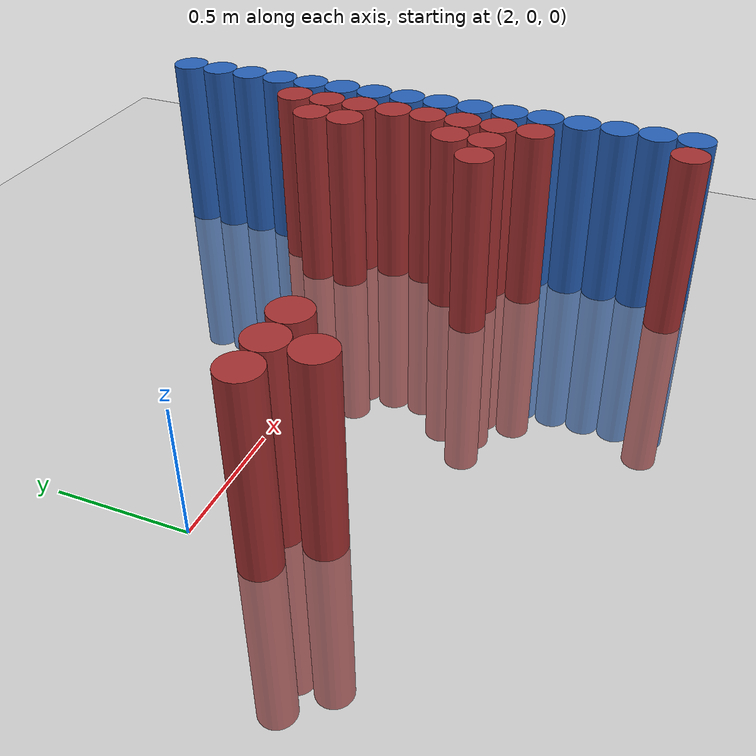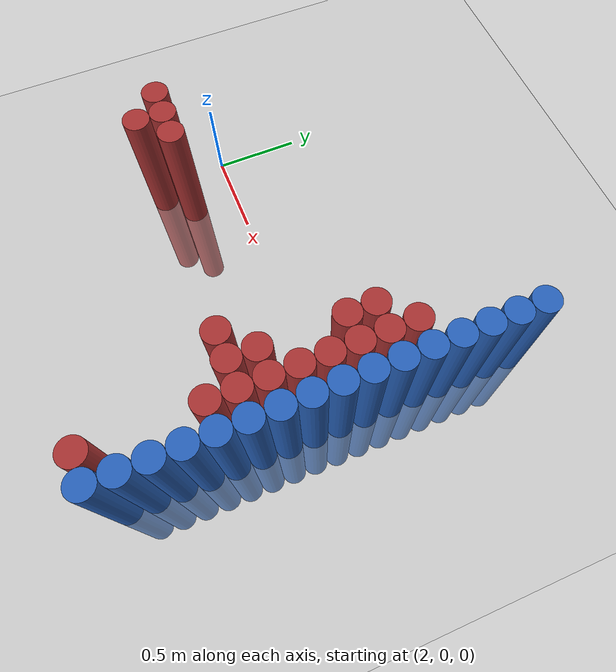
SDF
<sdf version="1.6">
 <world name="default">
  <model name="ground_plane">
   <static>1</static>
   <link name="link">
    <collision name="collision">
     <geometry><plane><normal>0 0 1</normal><size>100 100</size></plane></geometry>
     <surface><friction><ode><mu>100</mu><mu2>50</mu2></ode></friction></surface>
    </collision>
    <visual name="visual">
     <cast_shadows>0</cast_shadows>
     <geometry><plane><normal>0 0 1</normal><size>100 100</size></plane></geometry>
     <material>
      <script><uri>file://media/materials/scripts/gazebo.material</uri><name>Gazebo/Grey</name></script>
     </material>
    </visual>
   </link>
  </model>
  <model name="unit_cylinder_98">
   <static>1</static>
   <pose>3.925000 -1.175000 0.000000 0.000000 0.000000 0.000000</pose>
   <link name="link">
    <inertial>
     <mass>1</mass>
     <inertia><ixx>0.145833</ixx><ixy>0</ixy><ixz>0</ixz><iyy>0.145833</iyy><iyz>0</iyz><izz>0.125</izz></inertia>
    </inertial>
    <collision name="collision">
     <geometry><cylinder><radius>0.075000</radius><length>1.5</length></cylinder></geometry>
    </collision>
    <visual name="visual">
     <geometry><cylinder><radius>0.075000</radius><length>1.5</length></cylinder></geometry>
     <material>
      <ambient>0.152000 0.379000 0.720000 1</ambient>
      <diffuse>0.152000 0.379000 0.720000 1</diffuse>
     </material>
     <material>
      <script><name>Gazebo/Grey</name><uri>file://media/materials/scripts/gazebo.material</uri></script>
     </material>
    </visual>
   </link>
  </model>
  <model name="unit_cylinder_100">
   <static>1</static>
   <pose>3.925000 -1.025000 0.000000 0.000000 0.000000 0.000000</pose>
   <link name="link">
    <inertial>
     <mass>1</mass>
     <inertia><ixx>0.145833</ixx><ixy>0</ixy><ixz>0</ixz><iyy>0.145833</iyy><iyz>0</iyz><izz>0.125</izz></inertia>
    </inertial>
    <collision name="collision">
     <geometry><cylinder><radius>0.075000</radius><length>1.5</length></cylinder></geometry>
    </collision>
    <visual name="visual">
     <geometry><cylinder><radius>0.075000</radius><length>1.5</length></cylinder></geometry>
     <material>
      <ambient>0.152000 0.379000 0.720000 1</ambient>
      <diffuse>0.152000 0.379000 0.720000 1</diffuse>
     </material>
     <material>
      <script><name>Gazebo/Grey</name><uri>file://media/materials/scripts/gazebo.material</uri></script>
     </material>
    </visual>
   </link>
  </model>
  <model name="unit_cylinder_102">
   <static>1</static>
   <pose>3.925000 -0.875000 0.000000 0.000000 0.000000 0.000000</pose>
   <link name="link">
    <inertial>
     <mass>1</mass>
     <inertia><ixx>0.145833</ixx><ixy>0</ixy><ixz>0</ixz><iyy>0.145833</iyy><iyz>0</iyz><izz>0.125</izz></inertia>
    </inertial>
    <collision name="collision">
     <geometry><cylinder><radius>0.075000</radius><length>1.5</length></cylinder></geometry>
    </collision>
    <visual name="visual">
     <geometry><cylinder><radius>0.075000</radius><length>1.5</length></cylinder></geometry>
     <material>
      <ambient>0.152000 0.379000 0.720000 1</ambient>
      <diffuse>0.152000 0.379000 0.720000 1</diffuse>
     </material>
     <material>
      <script><name>Gazebo/Grey</name><uri>file://media/materials/scripts/gazebo.material</uri></script>
     </material>
    </visual>
   </link>
  </model>
  <model name="unit_cylinder_104">
   <static>1</static>
   <pose>3.925000 -0.725000 0.000000 0.000000 0.000000 0.000000</pose>
   <link name="link">
    <inertial>
     <mass>1</mass>
     <inertia><ixx>0.145833</ixx><ixy>0</ixy><ixz>0</ixz><iyy>0.145833</iyy><iyz>0</iyz><izz>0.125</izz></inertia>
    </inertial>
    <collision name="collision">
     <geometry><cylinder><radius>0.075000</radius><length>1.5</length></cylinder></geometry>
    </collision>
    <visual name="visual">
     <geometry><cylinder><radius>0.075000</radius><length>1.5</length></cylinder></geometry>
     <material>
      <ambient>0.152000 0.379000 0.720000 1</ambient>
      <diffuse>0.152000 0.379000 0.720000 1</diffuse>
     </material>
     <material>
      <script><name>Gazebo/Grey</name><uri>file://media/materials/scripts/gazebo.material</uri></script>
     </material>
    </visual>
   </link>
  </model>
  <model name="unit_cylinder_106">
   <static>1</static>
   <pose>3.925000 -0.575000 0.000000 0.000000 0.000000 0.000000</pose>
   <link name="link">
    <inertial>
     <mass>1</mass>
     <inertia><ixx>0.145833</ixx><ixy>0</ixy><ixz>0</ixz><iyy>0.145833</iyy><iyz>0</iyz><izz>0.125</izz></inertia>
    </inertial>
    <collision name="collision">
     <geometry><cylinder><radius>0.075000</radius><length>1.5</length></cylinder></geometry>
    </collision>
    <visual name="visual">
     <geometry><cylinder><radius>0.075000</radius><length>1.5</length></cylinder></geometry>
     <material>
      <ambient>0.152000 0.379000 0.720000 1</ambient>
      <diffuse>0.152000 0.379000 0.720000 1</diffuse>
     </material>
     <material>
      <script><name>Gazebo/Grey</name><uri>file://media/materials/scripts/gazebo.material</uri></script>
     </material>
    </visual>
   </link>
  </model>
  <model name="unit_cylinder_108">
   <static>1</static>
   <pose>3.925000 -0.425000 0.000000 0.000000 0.000000 0.000000</pose>
   <link name="link">
    <inertial>
     <mass>1</mass>
     <inertia><ixx>0.145833</ixx><ixy>0</ixy><ixz>0</ixz><iyy>0.145833</iyy><iyz>0</iyz><izz>0.125</izz></inertia>
    </inertial>
    <collision name="collision">
     <geometry><cylinder><radius>0.075000</radius><length>1.5</length></cylinder></geometry>
    </collision>
    <visual name="visual">
     <geometry><cylinder><radius>0.075000</radius><length>1.5</length></cylinder></geometry>
     <material>
      <ambient>0.152000 0.379000 0.720000 1</ambient>
      <diffuse>0.152000 0.379000 0.720000 1</diffuse>
     </material>
     <material>
      <script><name>Gazebo/Grey</name><uri>file://media/materials/scripts/gazebo.material</uri></script>
     </material>
    </visual>
   </link>
  </model>
  <model name="unit_cylinder_110">
   <static>1</static>
   <pose>3.925000 -0.275000 0.000000 0.000000 0.000000 0.000000</pose>
   <link name="link">
    <inertial>
     <mass>1</mass>
     <inertia><ixx>0.145833</ixx><ixy>0</ixy><ixz>0</ixz><iyy>0.145833</iyy><iyz>0</iyz><izz>0.125</izz></inertia>
    </inertial>
    <collision name="collision">
     <geometry><cylinder><radius>0.075000</radius><length>1.5</length></cylinder></geometry>
    </collision>
    <visual name="visual">
     <geometry><cylinder><radius>0.075000</radius><length>1.5</length></cylinder></geometry>
     <material>
      <ambient>0.152000 0.379000 0.720000 1</ambient>
      <diffuse>0.152000 0.379000 0.720000 1</diffuse>
     </material>
     <material>
      <script><name>Gazebo/Grey</name><uri>file://media/materials/scripts/gazebo.material</uri></script>
     </material>
    </visual>
   </link>
  </model>
  <model name="unit_cylinder_112">
   <static>1</static>
   <pose>3.925000 -0.125000 0.000000 0.000000 0.000000 0.000000</pose>
   <link name="link">
    <inertial>
     <mass>1</mass>
     <inertia><ixx>0.145833</ixx><ixy>0</ixy><ixz>0</ixz><iyy>0.145833</iyy><iyz>0</iyz><izz>0.125</izz></inertia>
    </inertial>
    <collision name="collision">
     <geometry><cylinder><radius>0.075000</radius><length>1.5</length></cylinder></geometry>
    </collision>
    <visual name="visual">
     <geometry><cylinder><radius>0.075000</radius><length>1.5</length></cylinder></geometry>
     <material>
      <ambient>0.152000 0.379000 0.720000 1</ambient>
      <diffuse>0.152000 0.379000 0.720000 1</diffuse>
     </material>
     <material>
      <script><name>Gazebo/Grey</name><uri>file://media/materials/scripts/gazebo.material</uri></script>
     </material>
    </visual>
   </link>
  </model>
  <model name="unit_cylinder_114">
   <static>1</static>
   <pose>3.925000 0.025000 0.000000 0.000000 0.000000 0.000000</pose>
   <link name="link">
    <inertial>
     <mass>1</mass>
     <inertia><ixx>0.145833</ixx><ixy>0</ixy><ixz>0</ixz><iyy>0.145833</iyy><iyz>0</iyz><izz>0.125</izz></inertia>
    </inertial>
    <collision name="collision">
     <geometry><cylinder><radius>0.075000</radius><length>1.5</length></cylinder></geometry>
    </collision>
    <visual name="visual">
     <geometry><cylinder><radius>0.075000</radius><length>1.5</length></cylinder></geometry>
     <material>
      <ambient>0.152000 0.379000 0.720000 1</ambient>
      <diffuse>0.152000 0.379000 0.720000 1</diffuse>
     </material>
     <material>
      <script><name>Gazebo/Grey</name><uri>file://media/materials/scripts/gazebo.material</uri></script>
     </material>
    </visual>
   </link>
  </model>
  <model name="unit_cylinder_116">
   <static>1</static>
   <pose>3.925000 0.175000 0.000000 0.000000 0.000000 0.000000</pose>
   <link name="link">
    <inertial>
     <mass>1</mass>
     <inertia><ixx>0.145833</ixx><ixy>0</ixy><ixz>0</ixz><iyy>0.145833</iyy><iyz>0</iyz><izz>0.125</izz></inertia>
    </inertial>
    <collision name="collision">
     <geometry><cylinder><radius>0.075000</radius><length>1.5</length></cylinder></geometry>
    </collision>
    <visual name="visual">
     <geometry><cylinder><radius>0.075000</radius><length>1.5</length></cylinder></geometry>
     <material>
      <ambient>0.152000 0.379000 0.720000 1</ambient>
      <diffuse>0.152000 0.379000 0.720000 1</diffuse>
     </material>
     <material>
      <script><name>Gazebo/Grey</name><uri>file://media/materials/scripts/gazebo.material</uri></script>
     </material>
    </visual>
   </link>
  </model>
  <model name="unit_cylinder_118">
   <static>1</static>
   <pose>3.925000 0.325000 0.000000 0.000000 0.000000 0.000000</pose>
   <link name="link">
    <inertial>
     <mass>1</mass>
     <inertia><ixx>0.145833</ixx><ixy>0</ixy><ixz>0</ixz><iyy>0.145833</iyy><iyz>0</iyz><izz>0.125</izz></inertia>
    </inertial>
    <collision name="collision">
     <geometry><cylinder><radius>0.075000</radius><length>1.5</length></cylinder></geometry>
    </collision>
    <visual name="visual">
     <geometry><cylinder><radius>0.075000</radius><length>1.5</length></cylinder></geometry>
     <material>
      <ambient>0.152000 0.379000 0.720000 1</ambient>
      <diffuse>0.152000 0.379000 0.720000 1</diffuse>
     </material>
     <material>
      <script><name>Gazebo/Grey</name><uri>file://media/materials/scripts/gazebo.material</uri></script>
     </material>
    </visual>
   </link>
  </model>
  <model name="unit_cylinder_120">
   <static>1</static>
   <pose>3.925000 0.475000 0.000000 0.000000 0.000000 0.000000</pose>
   <link name="link">
    <inertial>
     <mass>1</mass>
     <inertia><ixx>0.145833</ixx><ixy>0</ixy><ixz>0</ixz><iyy>0.145833</iyy><iyz>0</iyz><izz>0.125</izz></inertia>
    </inertial>
    <collision name="collision">
     <geometry><cylinder><radius>0.075000</radius><length>1.5</length></cylinder></geometry>
    </collision>
    <visual name="visual">
     <geometry><cylinder><radius>0.075000</radius><length>1.5</length></cylinder></geometry>
     <material>
      <ambient>0.152000 0.379000 0.720000 1</ambient>
      <diffuse>0.152000 0.379000 0.720000 1</diffuse>
     </material>
     <material>
      <script><name>Gazebo/Grey</name><uri>file://media/materials/scripts/gazebo.material</uri></script>
     </material>
    </visual>
   </link>
  </model>
  <model name="unit_cylinder_122">
   <static>1</static>
   <pose>3.925000 0.625000 0.000000 0.000000 0.000000 0.000000</pose>
   <link name="link">
    <inertial>
     <mass>1</mass>
     <inertia><ixx>0.145833</ixx><ixy>0</ixy><ixz>0</ixz><iyy>0.145833</iyy><iyz>0</iyz><izz>0.125</izz></inertia>
    </inertial>
    <collision name="collision">
     <geometry><cylinder><radius>0.075000</radius><length>1.5</length></cylinder></geometry>
    </collision>
    <visual name="visual">
     <geometry><cylinder><radius>0.075000</radius><length>1.5</length></cylinder></geometry>
     <material>
      <ambient>0.152000 0.379000 0.720000 1</ambient>
      <diffuse>0.152000 0.379000 0.720000 1</diffuse>
     </material>
     <material>
      <script><name>Gazebo/Grey</name><uri>file://media/materials/scripts/gazebo.material</uri></script>
     </material>
    </visual>
   </link>
  </model>
  <model name="unit_cylinder_124">
   <static>1</static>
   <pose>3.925000 0.775000 0.000000 0.000000 0.000000 0.000000</pose>
   <link name="link">
    <inertial>
     <mass>1</mass>
     <inertia><ixx>0.145833</ixx><ixy>0</ixy><ixz>0</ixz><iyy>0.145833</iyy><iyz>0</iyz><izz>0.125</izz></inertia>
    </inertial>
    <collision name="collision">
     <geometry><cylinder><radius>0.075000</radius><length>1.5</length></cylinder></geometry>
    </collision>
    <visual name="visual">
     <geometry><cylinder><radius>0.075000</radius><length>1.5</length></cylinder></geometry>
     <material>
      <ambient>0.152000 0.379000 0.720000 1</ambient>
      <diffuse>0.152000 0.379000 0.720000 1</diffuse>
     </material>
     <material>
      <script><name>Gazebo/Grey</name><uri>file://media/materials/scripts/gazebo.material</uri></script>
     </material>
    </visual>
   </link>
  </model>
  <model name="unit_cylinder_126">
   <static>1</static>
   <pose>3.925000 0.925000 0.000000 0.000000 0.000000 0.000000</pose>
   <link name="link">
    <inertial>
     <mass>1</mass>
     <inertia><ixx>0.145833</ixx><ixy>0</ixy><ixz>0</ixz><iyy>0.145833</iyy><iyz>0</iyz><izz>0.125</izz></inertia>
    </inertial>
    <collision name="collision">
     <geometry><cylinder><radius>0.075000</radius><length>1.5</length></cylinder></geometry>
    </collision>
    <visual name="visual">
     <geometry><cylinder><radius>0.075000</radius><length>1.5</length></cylinder></geometry>
     <material>
      <ambient>0.152000 0.379000 0.720000 1</ambient>
      <diffuse>0.152000 0.379000 0.720000 1</diffuse>
     </material>
     <material>
      <script><name>Gazebo/Grey</name><uri>file://media/materials/scripts/gazebo.material</uri></script>
     </material>
    </visual>
   </link>
  </model>
  <model name="unit_cylinder_128">
   <static>1</static>
   <pose>3.925000 1.075000 0.000000 0.000000 0.000000 0.000000</pose>
   <link name="link">
    <inertial>
     <mass>1</mass>
     <inertia><ixx>0.145833</ixx><ixy>0</ixy><ixz>0</ixz><iyy>0.145833</iyy><iyz>0</iyz><izz>0.125</izz></inertia>
    </inertial>
    <collision name="collision">
     <geometry><cylinder><radius>0.075000</radius><length>1.5</length></cylinder></geometry>
    </collision>
    <visual name="visual">
     <geometry><cylinder><radius>0.075000</radius><length>1.5</length></cylinder></geometry>
     <material>
      <ambient>0.152000 0.379000 0.720000 1</ambient>
      <diffuse>0.152000 0.379000 0.720000 1</diffuse>
     </material>
     <material>
      <script><name>Gazebo/Grey</name><uri>file://media/materials/scripts/gazebo.material</uri></script>
     </material>
    </visual>
   </link>
  </model>
  <model name="unit_cylinder_397">
   <static>1</static>
   <pose>1.975000 -0.275000 0.000000 0.000000 0.000000 0.000000</pose>
   <link name="link">
    <inertial>
     <mass>1</mass>
     <inertia><ixx>0.145833</ixx><ixy>0</ixy><ixz>0</ixz><iyy>0.145833</iyy><iyz>0</iyz><izz>0.125</izz></inertia>
    </inertial>
    <collision name="collision">
     <geometry><cylinder><radius>0.075000</radius><length>1.5</length></cylinder></geometry>
    </collision>
    <visual name="visual">
     <geometry><cylinder><radius>0.075000</radius><length>1.5</length></cylinder></geometry>
     <material>
      <ambient>0.648000 0.192000 0.192000 1</ambient>
      <diffuse>0.648000 0.192000 0.192000 1</diffuse>
     </material>
     <material>
      <script><name>Gazebo/Grey</name><uri>file://media/materials/scripts/gazebo.material</uri></script>
     </material>
    </visual>
   </link>
  </model>
  <model name="unit_cylinder_401">
   <static>1</static>
   <pose>2.125000 -0.425000 0.000000 0.000000 0.000000 0.000000</pose>
   <link name="link">
    <inertial>
     <mass>1</mass>
     <inertia><ixx>0.145833</ixx><ixy>0</ixy><ixz>0</ixz><iyy>0.145833</iyy><iyz>0</iyz><izz>0.125</izz></inertia>
    </inertial>
    <collision name="collision">
     <geometry><cylinder><radius>0.075000</radius><length>1.5</length></cylinder></geometry>
    </collision>
    <visual name="visual">
     <geometry><cylinder><radius>0.075000</radius><length>1.5</length></cylinder></geometry>
     <material>
      <ambient>0.648000 0.192000 0.192000 1</ambient>
      <diffuse>0.648000 0.192000 0.192000 1</diffuse>
     </material>
     <material>
      <script><name>Gazebo/Grey</name><uri>file://media/materials/scripts/gazebo.material</uri></script>
     </material>
    </visual>
   </link>
  </model>
  <model name="unit_cylinder_402">
   <static>1</static>
   <pose>2.125000 -0.275000 0.000000 0.000000 0.000000 0.000000</pose>
   <link name="link">
    <inertial>
     <mass>1</mass>
     <inertia><ixx>0.145833</ixx><ixy>0</ixy><ixz>0</ixz><iyy>0.145833</iyy><iyz>0</iyz><izz>0.125</izz></inertia>
    </inertial>
    <collision name="collision">
     <geometry><cylinder><radius>0.075000</radius><length>1.5</length></cylinder></geometry>
    </collision>
    <visual name="visual">
     <geometry><cylinder><radius>0.075000</radius><length>1.5</length></cylinder></geometry>
     <material>
      <ambient>0.648000 0.192000 0.192000 1</ambient>
      <diffuse>0.648000 0.192000 0.192000 1</diffuse>
     </material>
     <material>
      <script><name>Gazebo/Grey</name><uri>file://media/materials/scripts/gazebo.material</uri></script>
     </material>
    </visual>
   </link>
  </model>
  <model name="unit_cylinder_407">
   <static>1</static>
   <pose>2.275000 -0.275000 0.000000 0.000000 0.000000 0.000000</pose>
   <link name="link">
    <inertial>
     <mass>1</mass>
     <inertia><ixx>0.145833</ixx><ixy>0</ixy><ixz>0</ixz><iyy>0.145833</iyy><iyz>0</iyz><izz>0.125</izz></inertia>
    </inertial>
    <collision name="collision">
     <geometry><cylinder><radius>0.075000</radius><length>1.5</length></cylinder></geometry>
    </collision>
    <visual name="visual">
     <geometry><cylinder><radius>0.075000</radius><length>1.5</length></cylinder></geometry>
     <material>
      <ambient>0.648000 0.192000 0.192000 1</ambient>
      <diffuse>0.648000 0.192000 0.192000 1</diffuse>
     </material>
     <material>
      <script><name>Gazebo/Grey</name><uri>file://media/materials/scripts/gazebo.material</uri></script>
     </material>
    </visual>
   </link>
  </model>
  <model name="unit_cylinder_412">
   <static>1</static>
   <pose>3.475000 -0.425000 0.000000 0.000000 0.000000 0.000000</pose>
   <link name="link">
    <inertial>
     <mass>1</mass>
     <inertia><ixx>0.145833</ixx><ixy>0</ixy><ixz>0</ixz><iyy>0.145833</iyy><iyz>0</iyz><izz>0.125</izz></inertia>
    </inertial>
    <collision name="collision">
     <geometry><cylinder><radius>0.075000</radius><length>1.5</length></cylinder></geometry>
    </collision>
    <visual name="visual">
     <geometry><cylinder><radius>0.075000</radius><length>1.5</length></cylinder></geometry>
     <material>
      <ambient>0.648000 0.192000 0.192000 1</ambient>
      <diffuse>0.648000 0.192000 0.192000 1</diffuse>
     </material>
     <material>
      <script><name>Gazebo/Grey</name><uri>file://media/materials/scripts/gazebo.material</uri></script>
     </material>
    </visual>
   </link>
  </model>
  <model name="unit_cylinder_413">
   <static>1</static>
   <pose>3.625000 -0.425000 0.000000 0.000000 0.000000 0.000000</pose>
   <link name="link">
    <inertial>
     <mass>1</mass>
     <inertia><ixx>0.145833</ixx><ixy>0</ixy><ixz>0</ixz><iyy>0.145833</iyy><iyz>0</iyz><izz>0.125</izz></inertia>
    </inertial>
    <collision name="collision">
     <geometry><cylinder><radius>0.075000</radius><length>1.5</length></cylinder></geometry>
    </collision>
    <visual name="visual">
     <geometry><cylinder><radius>0.075000</radius><length>1.5</length></cylinder></geometry>
     <material>
      <ambient>0.648000 0.192000 0.192000 1</ambient>
      <diffuse>0.648000 0.192000 0.192000 1</diffuse>
     </material>
     <material>
      <script><name>Gazebo/Grey</name><uri>file://media/materials/scripts/gazebo.material</uri></script>
     </material>
    </visual>
   </link>
  </model>
  <model name="unit_cylinder_414">
   <static>1</static>
   <pose>3.625000 -0.275000 0.000000 0.000000 0.000000 0.000000</pose>
   <link name="link">
    <inertial>
     <mass>1</mass>
     <inertia><ixx>0.145833</ixx><ixy>0</ixy><ixz>0</ixz><iyy>0.145833</iyy><iyz>0</iyz><izz>0.125</izz></inertia>
    </inertial>
    <collision name="collision">
     <geometry><cylinder><radius>0.075000</radius><length>1.5</length></cylinder></geometry>
    </collision>
    <visual name="visual">
     <geometry><cylinder><radius>0.075000</radius><length>1.5</length></cylinder></geometry>
     <material>
      <ambient>0.648000 0.192000 0.192000 1</ambient>
      <diffuse>0.648000 0.192000 0.192000 1</diffuse>
     </material>
     <material>
      <script><name>Gazebo/Grey</name><uri>file://media/materials/scripts/gazebo.material</uri></script>
     </material>
    </visual>
   </link>
  </model>
  <model name="unit_cylinder_415">
   <static>1</static>
   <pose>3.625000 0.175000 0.000000 0.000000 0.000000 0.000000</pose>
   <link name="link">
    <inertial>
     <mass>1</mass>
     <inertia><ixx>0.145833</ixx><ixy>0</ixy><ixz>0</ixz><iyy>0.145833</iyy><iyz>0</iyz><izz>0.125</izz></inertia>
    </inertial>
    <collision name="collision">
     <geometry><cylinder><radius>0.075000</radius><length>1.5</length></cylinder></geometry>
    </collision>
    <visual name="visual">
     <geometry><cylinder><radius>0.075000</radius><length>1.5</length></cylinder></geometry>
     <material>
      <ambient>0.648000 0.192000 0.192000 1</ambient>
      <diffuse>0.648000 0.192000 0.192000 1</diffuse>
     </material>
     <material>
      <script><name>Gazebo/Grey</name><uri>file://media/materials/scripts/gazebo.material</uri></script>
     </material>
    </visual>
   </link>
  </model>
  <model name="unit_cylinder_416">
   <static>1</static>
   <pose>3.625000 0.325000 0.000000 0.000000 0.000000 0.000000</pose>
   <link name="link">
    <inertial>
     <mass>1</mass>
     <inertia><ixx>0.145833</ixx><ixy>0</ixy><ixz>0</ixz><iyy>0.145833</iyy><iyz>0</iyz><izz>0.125</izz></inertia>
    </inertial>
    <collision name="collision">
     <geometry><cylinder><radius>0.075000</radius><length>1.5</length></cylinder></geometry>
    </collision>
    <visual name="visual">
     <geometry><cylinder><radius>0.075000</radius><length>1.5</length></cylinder></geometry>
     <material>
      <ambient>0.648000 0.192000 0.192000 1</ambient>
      <diffuse>0.648000 0.192000 0.192000 1</diffuse>
     </material>
     <material>
      <script><name>Gazebo/Grey</name><uri>file://media/materials/scripts/gazebo.material</uri></script>
     </material>
    </visual>
   </link>
  </model>
  <model name="unit_cylinder_421">
   <static>1</static>
   <pose>3.775000 -1.175000 0.000000 0.000000 0.000000 0.000000</pose>
   <link name="link">
    <inertial>
     <mass>1</mass>
     <inertia><ixx>0.145833</ixx><ixy>0</ixy><ixz>0</ixz><iyy>0.145833</iyy><iyz>0</iyz><izz>0.125</izz></inertia>
    </inertial>
    <collision name="collision">
     <geometry><cylinder><radius>0.075000</radius><length>1.5</length></cylinder></geometry>
    </collision>
    <visual name="visual">
     <geometry><cylinder><radius>0.075000</radius><length>1.5</length></cylinder></geometry>
     <material>
      <ambient>0.648000 0.192000 0.192000 1</ambient>
      <diffuse>0.648000 0.192000 0.192000 1</diffuse>
     </material>
     <material>
      <script><name>Gazebo/Grey</name><uri>file://media/materials/scripts/gazebo.material</uri></script>
     </material>
    </visual>
   </link>
  </model>
  <model name="unit_cylinder_422">
   <static>1</static>
   <pose>3.775000 -0.575000 0.000000 0.000000 0.000000 0.000000</pose>
   <link name="link">
    <inertial>
     <mass>1</mass>
     <inertia><ixx>0.145833</ixx><ixy>0</ixy><ixz>0</ixz><iyy>0.145833</iyy><iyz>0</iyz><izz>0.125</izz></inertia>
    </inertial>
    <collision name="collision">
     <geometry><cylinder><radius>0.075000</radius><length>1.5</length></cylinder></geometry>
    </collision>
    <visual name="visual">
     <geometry><cylinder><radius>0.075000</radius><length>1.5</length></cylinder></geometry>
     <material>
      <ambient>0.648000 0.192000 0.192000 1</ambient>
      <diffuse>0.648000 0.192000 0.192000 1</diffuse>
     </material>
     <material>
      <script><name>Gazebo/Grey</name><uri>file://media/materials/scripts/gazebo.material</uri></script>
     </material>
    </visual>
   </link>
  </model>
  <model name="unit_cylinder_423">
   <static>1</static>
   <pose>3.775000 -0.425000 0.000000 0.000000 0.000000 0.000000</pose>
   <link name="link">
    <inertial>
     <mass>1</mass>
     <inertia><ixx>0.145833</ixx><ixy>0</ixy><ixz>0</ixz><iyy>0.145833</iyy><iyz>0</iyz><izz>0.125</izz></inertia>
    </inertial>
    <collision name="collision">
     <geometry><cylinder><radius>0.075000</radius><length>1.5</length></cylinder></geometry>
    </collision>
    <visual name="visual">
     <geometry><cylinder><radius>0.075000</radius><length>1.5</length></cylinder></geometry>
     <material>
      <ambient>0.648000 0.192000 0.192000 1</ambient>
      <diffuse>0.648000 0.192000 0.192000 1</diffuse>
     </material>
     <material>
      <script><name>Gazebo/Grey</name><uri>file://media/materials/scripts/gazebo.material</uri></script>
     </material>
    </visual>
   </link>
  </model>
  <model name="unit_cylinder_424">
   <static>1</static>
   <pose>3.775000 -0.275000 0.000000 0.000000 0.000000 0.000000</pose>
   <link name="link">
    <inertial>
     <mass>1</mass>
     <inertia><ixx>0.145833</ixx><ixy>0</ixy><ixz>0</ixz><iyy>0.145833</iyy><iyz>0</iyz><izz>0.125</izz></inertia>
    </inertial>
    <collision name="collision">
     <geometry><cylinder><radius>0.075000</radius><length>1.5</length></cylinder></geometry>
    </collision>
    <visual name="visual">
     <geometry><cylinder><radius>0.075000</radius><length>1.5</length></cylinder></geometry>
     <material>
      <ambient>0.648000 0.192000 0.192000 1</ambient>
      <diffuse>0.648000 0.192000 0.192000 1</diffuse>
     </material>
     <material>
      <script><name>Gazebo/Grey</name><uri>file://media/materials/scripts/gazebo.material</uri></script>
     </material>
    </visual>
   </link>
  </model>
  <model name="unit_cylinder_425">
   <static>1</static>
   <pose>3.775000 -0.125000 0.000000 0.000000 0.000000 0.000000</pose>
   <link name="link">
    <inertial>
     <mass>1</mass>
     <inertia><ixx>0.145833</ixx><ixy>0</ixy><ixz>0</ixz><iyy>0.145833</iyy><iyz>0</iyz><izz>0.125</izz></inertia>
    </inertial>
    <collision name="collision">
     <geometry><cylinder><radius>0.075000</radius><length>1.5</length></cylinder></geometry>
    </collision>
    <visual name="visual">
     <geometry><cylinder><radius>0.075000</radius><length>1.5</length></cylinder></geometry>
     <material>
      <ambient>0.648000 0.192000 0.192000 1</ambient>
      <diffuse>0.648000 0.192000 0.192000 1</diffuse>
     </material>
     <material>
      <script><name>Gazebo/Grey</name><uri>file://media/materials/scripts/gazebo.material</uri></script>
     </material>
    </visual>
   </link>
  </model>
  <model name="unit_cylinder_426">
   <static>1</static>
   <pose>3.775000 0.025000 0.000000 0.000000 0.000000 0.000000</pose>
   <link name="link">
    <inertial>
     <mass>1</mass>
     <inertia><ixx>0.145833</ixx><ixy>0</ixy><ixz>0</ixz><iyy>0.145833</iyy><iyz>0</iyz><izz>0.125</izz></inertia>
    </inertial>
    <collision name="collision">
     <geometry><cylinder><radius>0.075000</radius><length>1.5</length></cylinder></geometry>
    </collision>
    <visual name="visual">
     <geometry><cylinder><radius>0.075000</radius><length>1.5</length></cylinder></geometry>
     <material>
      <ambient>0.648000 0.192000 0.192000 1</ambient>
      <diffuse>0.648000 0.192000 0.192000 1</diffuse>
     </material>
     <material>
      <script><name>Gazebo/Grey</name><uri>file://media/materials/scripts/gazebo.material</uri></script>
     </material>
    </visual>
   </link>
  </model>
  <model name="unit_cylinder_427">
   <static>1</static>
   <pose>3.775000 0.175000 0.000000 0.000000 0.000000 0.000000</pose>
   <link name="link">
    <inertial>
     <mass>1</mass>
     <inertia><ixx>0.145833</ixx><ixy>0</ixy><ixz>0</ixz><iyy>0.145833</iyy><iyz>0</iyz><izz>0.125</izz></inertia>
    </inertial>
    <collision name="collision">
     <geometry><cylinder><radius>0.075000</radius><length>1.5</length></cylinder></geometry>
    </collision>
    <visual name="visual">
     <geometry><cylinder><radius>0.075000</radius><length>1.5</length></cylinder></geometry>
     <material>
      <ambient>0.648000 0.192000 0.192000 1</ambient>
      <diffuse>0.648000 0.192000 0.192000 1</diffuse>
     </material>
     <material>
      <script><name>Gazebo/Grey</name><uri>file://media/materials/scripts/gazebo.material</uri></script>
     </material>
    </visual>
   </link>
  </model>
  <model name="unit_cylinder_428">
   <static>1</static>
   <pose>3.775000 0.325000 0.000000 0.000000 0.000000 0.000000</pose>
   <link name="link">
    <inertial>
     <mass>1</mass>
     <inertia><ixx>0.145833</ixx><ixy>0</ixy><ixz>0</ixz><iyy>0.145833</iyy><iyz>0</iyz><izz>0.125</izz></inertia>
    </inertial>
    <collision name="collision">
     <geometry><cylinder><radius>0.075000</radius><length>1.5</length></cylinder></geometry>
    </collision>
    <visual name="visual">
     <geometry><cylinder><radius>0.075000</radius><length>1.5</length></cylinder></geometry>
     <material>
      <ambient>0.648000 0.192000 0.192000 1</ambient>
      <diffuse>0.648000 0.192000 0.192000 1</diffuse>
     </material>
     <material>
      <script><name>Gazebo/Grey</name><uri>file://media/materials/scripts/gazebo.material</uri></script>
     </material>
    </visual>
   </link>
  </model>
  <model name="unit_cylinder_429">
   <static>1</static>
   <pose>3.775000 0.475000 0.000000 0.000000 0.000000 0.000000</pose>
   <link name="link">
    <inertial>
     <mass>1</mass>
     <inertia><ixx>0.145833</ixx><ixy>0</ixy><ixz>0</ixz><iyy>0.145833</iyy><iyz>0</iyz><izz>0.125</izz></inertia>
    </inertial>
    <collision name="collision">
     <geometry><cylinder><radius>0.075000</radius><length>1.5</length></cylinder></geometry>
    </collision>
    <visual name="visual">
     <geometry><cylinder><radius>0.075000</radius><length>1.5</length></cylinder></geometry>
     <material>
      <ambient>0.648000 0.192000 0.192000 1</ambient>
      <diffuse>0.648000 0.192000 0.192000 1</diffuse>
     </material>
     <material>
      <script><name>Gazebo/Grey</name><uri>file://media/materials/scripts/gazebo.material</uri></script>
     </material>
    </visual>
   </link>
  </model>
  <model name="unit_cylinder_447">
   <static>1</static>
   <pose>3.925000 -1.175000 0.000000 0.000000 0.000000 0.000000</pose>
   <link name="link">
    <inertial>
     <mass>1</mass>
     <inertia><ixx>0.145833</ixx><ixy>0</ixy><ixz>0</ixz><iyy>0.145833</iyy><iyz>0</iyz><izz>0.125</izz></inertia>
    </inertial>
    <collision name="collision">
     <geometry><cylinder><radius>0.075000</radius><length>1.5</length></cylinder></geometry>
    </collision>
    <visual name="visual">
     <geometry><cylinder><radius>0.075000</radius><length>1.5</length></cylinder></geometry>
     <material>
      <ambient>0.152000 0.379000 0.720000 1</ambient>
      <diffuse>0.152000 0.379000 0.720000 1</diffuse>
     </material>
     <material>
      <script><name>Gazebo/Grey</name><uri>file://media/materials/scripts/gazebo.material</uri></script>
     </material>
    </visual>
   </link>
  </model>
  <model name="unit_cylinder_448">
   <static>1</static>
   <pose>3.925000 -1.025000 0.000000 0.000000 0.000000 0.000000</pose>
   <link name="link">
    <inertial>
     <mass>1</mass>
     <inertia><ixx>0.145833</ixx><ixy>0</ixy><ixz>0</ixz><iyy>0.145833</iyy><iyz>0</iyz><izz>0.125</izz></inertia>
    </inertial>
    <collision name="collision">
     <geometry><cylinder><radius>0.075000</radius><length>1.5</length></cylinder></geometry>
    </collision>
    <visual name="visual">
     <geometry><cylinder><radius>0.075000</radius><length>1.5</length></cylinder></geometry>
     <material>
      <ambient>0.152000 0.379000 0.720000 1</ambient>
      <diffuse>0.152000 0.379000 0.720000 1</diffuse>
     </material>
     <material>
      <script><name>Gazebo/Grey</name><uri>file://media/materials/scripts/gazebo.material</uri></script>
     </material>
    </visual>
   </link>
  </model>
  <model name="unit_cylinder_449">
   <static>1</static>
   <pose>3.925000 -0.875000 0.000000 0.000000 0.000000 0.000000</pose>
   <link name="link">
    <inertial>
     <mass>1</mass>
     <inertia><ixx>0.145833</ixx><ixy>0</ixy><ixz>0</ixz><iyy>0.145833</iyy><iyz>0</iyz><izz>0.125</izz></inertia>
    </inertial>
    <collision name="collision">
     <geometry><cylinder><radius>0.075000</radius><length>1.5</length></cylinder></geometry>
    </collision>
    <visual name="visual">
     <geometry><cylinder><radius>0.075000</radius><length>1.5</length></cylinder></geometry>
     <material>
      <ambient>0.152000 0.379000 0.720000 1</ambient>
      <diffuse>0.152000 0.379000 0.720000 1</diffuse>
     </material>
     <material>
      <script><name>Gazebo/Grey</name><uri>file://media/materials/scripts/gazebo.material</uri></script>
     </material>
    </visual>
   </link>
  </model>
  <model name="unit_cylinder_450">
   <static>1</static>
   <pose>3.925000 -0.725000 0.000000 0.000000 0.000000 0.000000</pose>
   <link name="link">
    <inertial>
     <mass>1</mass>
     <inertia><ixx>0.145833</ixx><ixy>0</ixy><ixz>0</ixz><iyy>0.145833</iyy><iyz>0</iyz><izz>0.125</izz></inertia>
    </inertial>
    <collision name="collision">
     <geometry><cylinder><radius>0.075000</radius><length>1.5</length></cylinder></geometry>
    </collision>
    <visual name="visual">
     <geometry><cylinder><radius>0.075000</radius><length>1.5</length></cylinder></geometry>
     <material>
      <ambient>0.152000 0.379000 0.720000 1</ambient>
      <diffuse>0.152000 0.379000 0.720000 1</diffuse>
     </material>
     <material>
      <script><name>Gazebo/Grey</name><uri>file://media/materials/scripts/gazebo.material</uri></script>
     </material>
    </visual>
   </link>
  </model>
  <model name="unit_cylinder_451">
   <static>1</static>
   <pose>3.925000 -0.575000 0.000000 0.000000 0.000000 0.000000</pose>
   <link name="link">
    <inertial>
     <mass>1</mass>
     <inertia><ixx>0.145833</ixx><ixy>0</ixy><ixz>0</ixz><iyy>0.145833</iyy><iyz>0</iyz><izz>0.125</izz></inertia>
    </inertial>
    <collision name="collision">
     <geometry><cylinder><radius>0.075000</radius><length>1.5</length></cylinder></geometry>
    </collision>
    <visual name="visual">
     <geometry><cylinder><radius>0.075000</radius><length>1.5</length></cylinder></geometry>
     <material>
      <ambient>0.152000 0.379000 0.720000 1</ambient>
      <diffuse>0.152000 0.379000 0.720000 1</diffuse>
     </material>
     <material>
      <script><name>Gazebo/Grey</name><uri>file://media/materials/scripts/gazebo.material</uri></script>
     </material>
    </visual>
   </link>
  </model>
  <model name="unit_cylinder_452">
   <static>1</static>
   <pose>3.925000 -0.425000 0.000000 0.000000 0.000000 0.000000</pose>
   <link name="link">
    <inertial>
     <mass>1</mass>
     <inertia><ixx>0.145833</ixx><ixy>0</ixy><ixz>0</ixz><iyy>0.145833</iyy><iyz>0</iyz><izz>0.125</izz></inertia>
    </inertial>
    <collision name="collision">
     <geometry><cylinder><radius>0.075000</radius><length>1.5</length></cylinder></geometry>
    </collision>
    <visual name="visual">
     <geometry><cylinder><radius>0.075000</radius><length>1.5</length></cylinder></geometry>
     <material>
      <ambient>0.152000 0.379000 0.720000 1</ambient>
      <diffuse>0.152000 0.379000 0.720000 1</diffuse>
     </material>
     <material>
      <script><name>Gazebo/Grey</name><uri>file://media/materials/scripts/gazebo.material</uri></script>
     </material>
    </visual>
   </link>
  </model>
  <model name="unit_cylinder_453">
   <static>1</static>
   <pose>3.925000 -0.275000 0.000000 0.000000 0.000000 0.000000</pose>
   <link name="link">
    <inertial>
     <mass>1</mass>
     <inertia><ixx>0.145833</ixx><ixy>0</ixy><ixz>0</ixz><iyy>0.145833</iyy><iyz>0</iyz><izz>0.125</izz></inertia>
    </inertial>
    <collision name="collision">
     <geometry><cylinder><radius>0.075000</radius><length>1.5</length></cylinder></geometry>
    </collision>
    <visual name="visual">
     <geometry><cylinder><radius>0.075000</radius><length>1.5</length></cylinder></geometry>
     <material>
      <ambient>0.152000 0.379000 0.720000 1</ambient>
      <diffuse>0.152000 0.379000 0.720000 1</diffuse>
     </material>
     <material>
      <script><name>Gazebo/Grey</name><uri>file://media/materials/scripts/gazebo.material</uri></script>
     </material>
    </visual>
   </link>
  </model>
  <model name="unit_cylinder_454">
   <static>1</static>
   <pose>3.925000 -0.125000 0.000000 0.000000 0.000000 0.000000</pose>
   <link name="link">
    <inertial>
     <mass>1</mass>
     <inertia><ixx>0.145833</ixx><ixy>0</ixy><ixz>0</ixz><iyy>0.145833</iyy><iyz>0</iyz><izz>0.125</izz></inertia>
    </inertial>
    <collision name="collision">
     <geometry><cylinder><radius>0.075000</radius><length>1.5</length></cylinder></geometry>
    </collision>
    <visual name="visual">
     <geometry><cylinder><radius>0.075000</radius><length>1.5</length></cylinder></geometry>
     <material>
      <ambient>0.152000 0.379000 0.720000 1</ambient>
      <diffuse>0.152000 0.379000 0.720000 1</diffuse>
     </material>
     <material>
      <script><name>Gazebo/Grey</name><uri>file://media/materials/scripts/gazebo.material</uri></script>
     </material>
    </visual>
   </link>
  </model>
  <model name="unit_cylinder_455">
   <static>1</static>
   <pose>3.925000 0.025000 0.000000 0.000000 0.000000 0.000000</pose>
   <link name="link">
    <inertial>
     <mass>1</mass>
     <inertia><ixx>0.145833</ixx><ixy>0</ixy><ixz>0</ixz><iyy>0.145833</iyy><iyz>0</iyz><izz>0.125</izz></inertia>
    </inertial>
    <collision name="collision">
     <geometry><cylinder><radius>0.075000</radius><length>1.5</length></cylinder></geometry>
    </collision>
    <visual name="visual">
     <geometry><cylinder><radius>0.075000</radius><length>1.5</length></cylinder></geometry>
     <material>
      <ambient>0.152000 0.379000 0.720000 1</ambient>
      <diffuse>0.152000 0.379000 0.720000 1</diffuse>
     </material>
     <material>
      <script><name>Gazebo/Grey</name><uri>file://media/materials/scripts/gazebo.material</uri></script>
     </material>
    </visual>
   </link>
  </model>
  <model name="unit_cylinder_456">
   <static>1</static>
   <pose>3.925000 0.175000 0.000000 0.000000 0.000000 0.000000</pose>
   <link name="link">
    <inertial>
     <mass>1</mass>
     <inertia><ixx>0.145833</ixx><ixy>0</ixy><ixz>0</ixz><iyy>0.145833</iyy><iyz>0</iyz><izz>0.125</izz></inertia>
    </inertial>
    <collision name="collision">
     <geometry><cylinder><radius>0.075000</radius><length>1.5</length></cylinder></geometry>
    </collision>
    <visual name="visual">
     <geometry><cylinder><radius>0.075000</radius><length>1.5</length></cylinder></geometry>
     <material>
      <ambient>0.152000 0.379000 0.720000 1</ambient>
      <diffuse>0.152000 0.379000 0.720000 1</diffuse>
     </material>
     <material>
      <script><name>Gazebo/Grey</name><uri>file://media/materials/scripts/gazebo.material</uri></script>
     </material>
    </visual>
   </link>
  </model>
  <model name="unit_cylinder_457">
   <static>1</static>
   <pose>3.925000 0.325000 0.000000 0.000000 0.000000 0.000000</pose>
   <link name="link">
    <inertial>
     <mass>1</mass>
     <inertia><ixx>0.145833</ixx><ixy>0</ixy><ixz>0</ixz><iyy>0.145833</iyy><iyz>0</iyz><izz>0.125</izz></inertia>
    </inertial>
    <collision name="collision">
     <geometry><cylinder><radius>0.075000</radius><length>1.5</length></cylinder></geometry>
    </collision>
    <visual name="visual">
     <geometry><cylinder><radius>0.075000</radius><length>1.5</length></cylinder></geometry>
     <material>
      <ambient>0.152000 0.379000 0.720000 1</ambient>
      <diffuse>0.152000 0.379000 0.720000 1</diffuse>
     </material>
     <material>
      <script><name>Gazebo/Grey</name><uri>file://media/materials/scripts/gazebo.material</uri></script>
     </material>
    </visual>
   </link>
  </model>
  <model name="unit_cylinder_458">
   <static>1</static>
   <pose>3.925000 0.475000 0.000000 0.000000 0.000000 0.000000</pose>
   <link name="link">
    <inertial>
     <mass>1</mass>
     <inertia><ixx>0.145833</ixx><ixy>0</ixy><ixz>0</ixz><iyy>0.145833</iyy><iyz>0</iyz><izz>0.125</izz></inertia>
    </inertial>
    <collision name="collision">
     <geometry><cylinder><radius>0.075000</radius><length>1.5</length></cylinder></geometry>
    </collision>
    <visual name="visual">
     <geometry><cylinder><radius>0.075000</radius><length>1.5</length></cylinder></geometry>
     <material>
      <ambient>0.152000 0.379000 0.720000 1</ambient>
      <diffuse>0.152000 0.379000 0.720000 1</diffuse>
     </material>
     <material>
      <script><name>Gazebo/Grey</name><uri>file://media/materials/scripts/gazebo.material</uri></script>
     </material>
    </visual>
   </link>
  </model>
  <model name="unit_cylinder_459">
   <static>1</static>
   <pose>3.925000 0.625000 0.000000 0.000000 0.000000 0.000000</pose>
   <link name="link">
    <inertial>
     <mass>1</mass>
     <inertia><ixx>0.145833</ixx><ixy>0</ixy><ixz>0</ixz><iyy>0.145833</iyy><iyz>0</iyz><izz>0.125</izz></inertia>
    </inertial>
    <collision name="collision">
     <geometry><cylinder><radius>0.075000</radius><length>1.5</length></cylinder></geometry>
    </collision>
    <visual name="visual">
     <geometry><cylinder><radius>0.075000</radius><length>1.5</length></cylinder></geometry>
     <material>
      <ambient>0.152000 0.379000 0.720000 1</ambient>
      <diffuse>0.152000 0.379000 0.720000 1</diffuse>
     </material>
     <material>
      <script><name>Gazebo/Grey</name><uri>file://media/materials/scripts/gazebo.material</uri></script>
     </material>
    </visual>
   </link>
  </model>
  <model name="unit_cylinder_460">
   <static>1</static>
   <pose>3.925000 0.775000 0.000000 0.000000 0.000000 0.000000</pose>
   <link name="link">
    <inertial>
     <mass>1</mass>
     <inertia><ixx>0.145833</ixx><ixy>0</ixy><ixz>0</ixz><iyy>0.145833</iyy><iyz>0</iyz><izz>0.125</izz></inertia>
    </inertial>
    <collision name="collision">
     <geometry><cylinder><radius>0.075000</radius><length>1.5</length></cylinder></geometry>
    </collision>
    <visual name="visual">
     <geometry><cylinder><radius>0.075000</radius><length>1.5</length></cylinder></geometry>
     <material>
      <ambient>0.152000 0.379000 0.720000 1</ambient>
      <diffuse>0.152000 0.379000 0.720000 1</diffuse>
     </material>
     <material>
      <script><name>Gazebo/Grey</name><uri>file://media/materials/scripts/gazebo.material</uri></script>
     </material>
    </visual>
   </link>
  </model>
  <model name="unit_cylinder_461">
   <static>1</static>
   <pose>3.925000 0.925000 0.000000 0.000000 0.000000 0.000000</pose>
   <link name="link">
    <inertial>
     <mass>1</mass>
     <inertia><ixx>0.145833</ixx><ixy>0</ixy><ixz>0</ixz><iyy>0.145833</iyy><iyz>0</iyz><izz>0.125</izz></inertia>
    </inertial>
    <collision name="collision">
     <geometry><cylinder><radius>0.075000</radius><length>1.5</length></cylinder></geometry>
    </collision>
    <visual name="visual">
     <geometry><cylinder><radius>0.075000</radius><length>1.5</length></cylinder></geometry>
     <material>
      <ambient>0.152000 0.379000 0.720000 1</ambient>
      <diffuse>0.152000 0.379000 0.720000 1</diffuse>
     </material>
     <material>
      <script><name>Gazebo/Grey</name><uri>file://media/materials/scripts/gazebo.material</uri></script>
     </material>
    </visual>
   </link>
  </model>
 </world>
</sdf>
